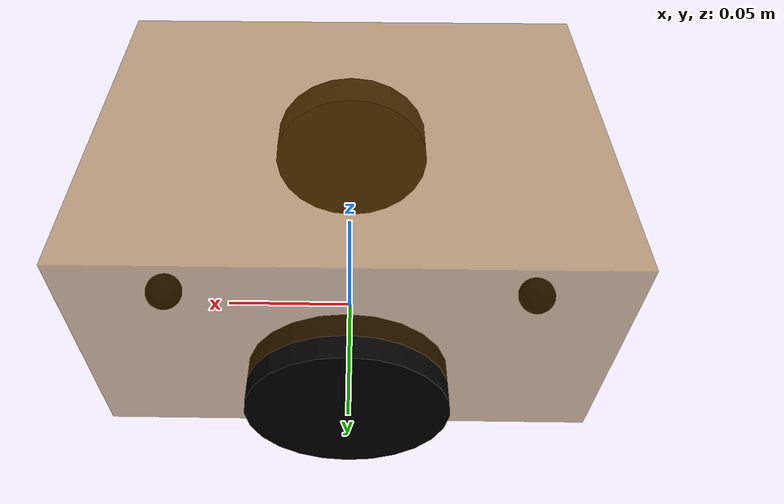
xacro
<robot name="my_base" xmlns:xacro="http://www.ros.org/wiki/xacro">
    <!-- 封装变量、常量 -->
    <xacro:property name="PI" value="3.141"/>
    <!-- 宏:黑色设置 -->
    <material name="black">
        <color rgba="0.0 0.0 0.0 1.0" />
    </material>
    <!-- 底盘属性 -->
    <xacro:property name="base_footprint_radius" value="0.001" /> <!-- base_footprint 半径  -->
    <xacro:property name="base_link_radius" value="0.12" /> <!-- base_link 半径 -->
    <xacro:property name="base_link_width" value="0.16" /> <!-- base_link 宽 -->
    <xacro:property name="base_link_length" value="0.08" /> <!-- base_link 长 -->
    <xacro:property name="earth_space" value="0.015" /> <!-- 离地间距 -->
    <xacro:property name="base_link_m" value="5.0" />
    <xacro:property name="wheel_m" value="0.05" /> <!-- 质量  -->
    <xacro:property name="support_wheel_m" value="0.03" /> <!-- 质量  -->
    <!-- 底盘 -->
    <link name="base_footprint">
      <visual>
        <geometry>
          <sphere radius="${base_footprint_radius}" />
        </geometry>
      </visual>
      <gazebo reference="base_link">
        <material>Gazebo/Yellow</material>
    </gazebo>
    </link>

    <link name="base_link">
      <visual>
        <geometry>
          <box size="${base_link_width} ${base_link_radius} ${base_link_length}" />
        </geometry>
        <origin xyz="0 0 0" rpy="0 0 0" />
        <material name="yellow">
          <color rgba="0.5 0.3 0.0 0.5" />
        </material>
      </visual>
      <collision>
        <geometry>
          <box size="${base_link_width} ${base_link_radius} ${base_link_length}"/>
        </geometry>
        <origin xyz="0.0 0.0 0.0" rpy="0.0 0.0 0.0" />
    </collision>
    <xacro:Box_inertial_matrix m="${base_link_m}" l="${base_link_radius}"  w="${base_link_width}" h="${base_link_length}" />
    </link>

    <joint name="base_link2base_footprint" type="fixed">
      <parent link="base_footprint" />
      <child link="base_link" />
      <origin xyz="0 0 ${earth_space + base_link_length / 2 }" />
    </joint>
    <gazebo reference="base_link">
      <material>Gazebo/Yellow</material>
    </gazebo>
    <!-- 驱动轮 -->
    <!-- 驱动轮属性 -->
    <xacro:property name="wheel_radius" value="0.0325" /><!-- 半径 -->
    <xacro:property name="wheel_length" value="0.015" /><!-- 宽度 -->
    <!-- 驱动轮宏实现 -->
    <xacro:macro name="add_wheels" params="name flag">
      <link name="${name}_wheel">
        <visual>
          <geometry>
            <cylinder radius="${wheel_radius}" length="${wheel_length}" />
          </geometry>
          <origin xyz="0.0 0.0 0.0" rpy="${PI / 2} 0.0 0.0" />
          <material name="black" />
        </visual>
        <collision>
          <geometry>
            <cylinder radius="${wheel_radius}" length="${wheel_length}" />
          </geometry>
          <origin xyz="0.0 0.0 0.0" rpy="${PI / 2} 0.0 0.0" />
      </collision>
      <xacro:cylinder_inertial_matrix m="${wheel_m}" r="${wheel_radius}" h="${wheel_length}" />

      </link>

      <joint name="${name}_wheel2base_link" type="continuous">
        <parent link="base_link" />
        <child link="${name}_wheel" />
        <origin xyz="0 ${flag * base_link_radius/2} ${-(earth_space + base_link_length / 2 - wheel_radius) }" />
        <axis xyz="0 1 0" />
      </joint>

      <gazebo reference="${name}_wheel">
        <material>Gazebo/Red</material>
      </gazebo>

    </xacro:macro>
    <xacro:add_wheels name="left" flag="1" />
    <xacro:add_wheels name="right" flag="-1" />

    <!-- 支撑轮 -->
    <!-- 支撑轮属性 -->
    <xacro:property name="support_wheel_radius" value="0.0075" /> <!-- 支撑轮半径 -->

    <!-- 支撑轮宏 -->
    <xacro:macro name="add_support_wheel" params="name flag" >
      <link name="${name}_wheel">
        <visual>
            <geometry>
                <sphere radius="${support_wheel_radius}" />
            </geometry>
            <origin xyz="0 0 0" rpy="0 0 0" />
            <material name="black" />
        </visual>
        <collision>
          <geometry>
              <sphere radius="${support_wheel_radius}" />
          </geometry>
          <origin xyz="0 0 0" rpy="0 0 0" />
      </collision>
      <xacro:sphere_inertial_matrix m="${support_wheel_m}" r="${support_wheel_radius}" />

      </link>

      <joint name="${name}_wheel2base_link" type="continuous">
          <parent link="base_link" />
          <child link="${name}_wheel" />
          <origin xyz="${flag * base_link_width/2*0.95} 0 ${-(base_link_length / 2 + earth_space / 2)}" />
          <axis xyz="1 1 1" />
      </joint>
      <gazebo reference="${name}_wheel">
        <material>Gazebo/Red</material>
      </gazebo>
    </xacro:macro>

    <xacro:add_support_wheel name="front" flag="1" />
    <xacro:add_support_wheel name="back" flag="-1" />
</robot>
